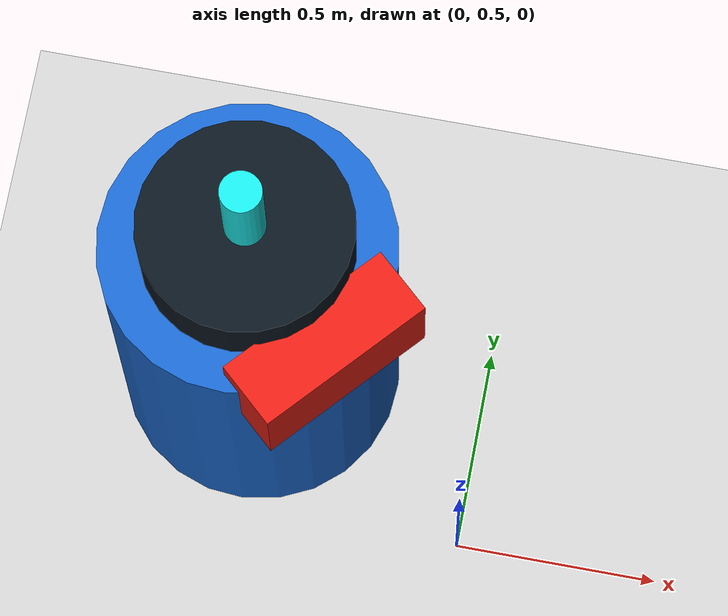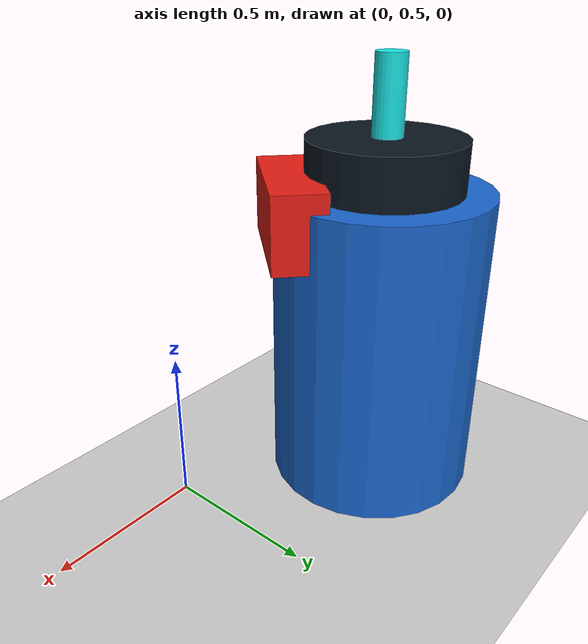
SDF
<sdf version="1.7">
 <world name="default">
  <plugin name="socnav_plugin" filename="libSocNavPlugin.so">
   <robot_name>robot</robot_name>
   <trajectory_file>/home/hunav_gz_classic_ws/SocNav3_trajectories/src6/000003936.json</trajectory_file>
   <human_slots>2</human_slots>
   <goal_angle_mesh>
    <angle_threshold>0.170222162198</angle_threshold>
    <uri>/home/hunav_gz_classic_ws/src/socnav_gazebo_reproducer/meshes/000003936_goal_angle_00.stl</uri>
   </goal_angle_mesh>
  </plugin>
  <light name="sun" type="directional">
   <pose>0 0 10 0 -0 0</pose>
   <diffuse>0.8 0.8 0.8 1</diffuse>
   <specular>0.2 0.2 0.2 1</specular>
   <attenuation>
    <range>1000</range>
    <constant>0.9</constant>
    <linear>0.01</linear>
    <quadratic>0.001</quadratic>
   </attenuation>
   <direction>-0.5 0.1 -0.9</direction>
   <spot><inner_angle>0</inner_angle><outer_angle>0</outer_angle><falloff>0</falloff></spot>
  </light>
  <model name="ground_plane">
   <static>1</static>
   <link name="link">
    <collision name="collision">
     <geometry><plane><normal>0 0 1</normal><size>100 100</size></plane></geometry>
     <surface><friction><ode><mu>100</mu><mu2>50</mu2></ode></friction></surface>
    </collision>
    <visual name="visual">
     <cast_shadows>0</cast_shadows>
     <geometry><plane><normal>0 0 1</normal><size>100 100</size></plane></geometry>
     <material>
      <script><uri>file://media/materials/scripts/kitchen.material</uri><name>Kitchen/CounterTop_H</name></script>
     </material>
    </visual>
   </link>
  </model>
  <gravity>0 0 -9.8</gravity>
  <magnetic_field>6e-06 2.3e-05 -4.2e-05</magnetic_field>
  <atmosphere type="adiabatic"/>
  <physics type="ode">
   <max_step_size>0.001</max_step_size>
   <real_time_factor>1</real_time_factor>
   <real_time_update_rate>1000</real_time_update_rate>
  </physics>
  <scene><ambient>0.4 0.4 0.4 1</ambient><background>0.7 0.7 0.7 1</background><shadows>1</shadows></scene>
  <audio><device>default</device></audio>
  <spherical_coordinates>
   <surface_model>EARTH_WGS84</surface_model>
   <latitude_deg>0</latitude_deg>
   <longitude_deg>0</longitude_deg>
   <elevation>0</elevation>
   <heading_deg>0</heading_deg>
  </spherical_coordinates>
  <model name="robot">
   <pose>-0.5647175481599954 0.8718623231514988 0.5 0 0 -0.7360515014854203</pose>
   <link name="link">
    <collision name="collision">
     <geometry><cylinder><radius>0.34613624396629045</radius><length>1.0</length></cylinder></geometry>
    </collision>
    <visual name="visual">
     <geometry><cylinder><radius>0.34613624396629045</radius><length>1.0</length></cylinder></geometry>
     <material><ambient>0.1 0.4 0.8 1</ambient><diffuse>0.1 0.4 0.8 1</diffuse></material>
    </visual>
    <visual name="robot_top">
     <pose>0 0 0.58 0 0 0</pose>
     <geometry><cylinder><radius>0.2492180956557291</radius><length>0.16</length></cylinder></geometry>
     <material><ambient>0.04 0.08 0.12 1</ambient><diffuse>0.04 0.08 0.12 1</diffuse></material>
    </visual>
    <visual name="robot_front">
     <pose>0.29075444493168395 0 0.44 0 0 0</pose>
     <geometry><box><size>0.1661453971038194 0.4430543922768518 0.24</size></box></geometry>
     <material><ambient>0.9 0.12 0.08 1</ambient><diffuse>0.9 0.12 0.08 1</diffuse></material>
    </visual>
    <visual name="robot_sensor">
     <pose>0 0 0.78 0 0 0</pose>
     <geometry><cylinder><radius>0.04845907415528067</radius><length>0.24</length></cylinder></geometry>
     <material><ambient>0.1 0.9 0.9 1</ambient><diffuse>0.1 0.9 0.9 1</diffuse></material>
    </visual>
   </link>
  </model>
  <model name="simple_world_test"><static>1</static></model>
 </world>
</sdf>
